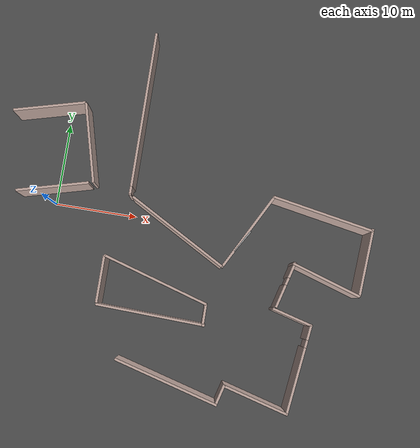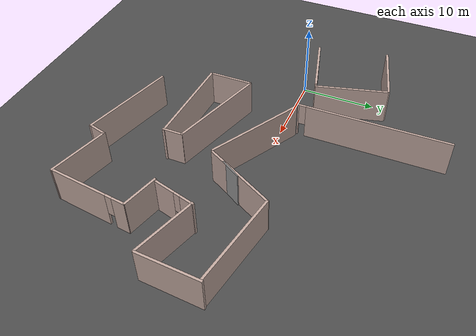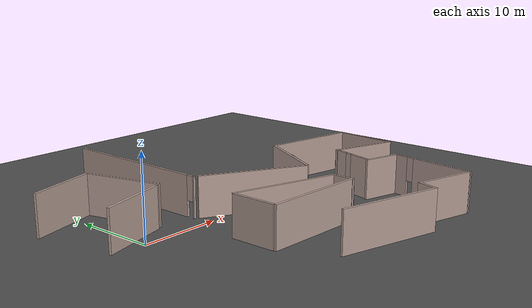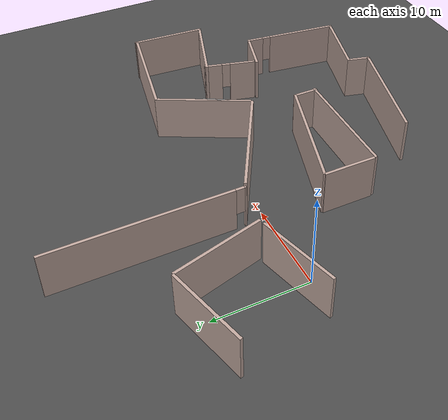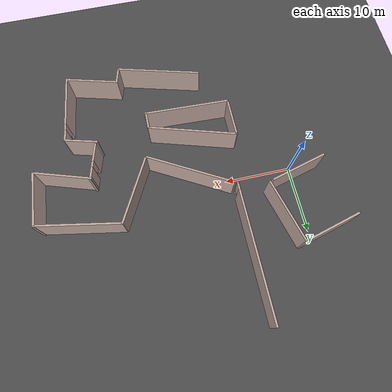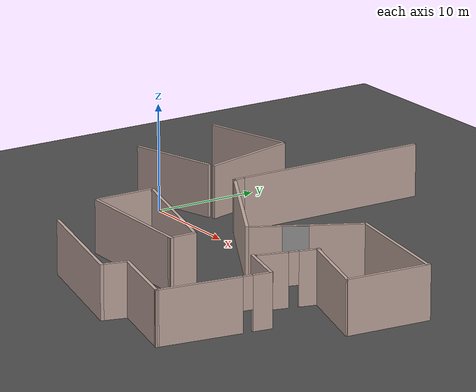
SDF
<sdf version="1.6">
 <model name="engineering_2F">
  <link name="Door_3">
   <pose>23.1364 -1.26405 0 0 -0 1.02413</pose>
   <visual name="Door_3_Visual">
    <pose>0 0 2.5 0 -0 0</pose>
    <geometry><box><size>3 0.17 5</size></box></geometry>
    <material>
     <script><uri>file://media/materials/scripts/gazebo.material</uri><name>Gazebo/Grey</name></script>
     <ambient>0.3 0.3 0.3 1</ambient>
     <diffuse>0.7 0.7 0.7 1</diffuse>
     <specular>0.01 0.01 0.01 1</specular>
     <emissive>0 0 0 1</emissive>
    </material>
   </visual>
   <collision name="Door_3_Collision">
    <pose>0 0 2.5 0 -0 0</pose>
    <geometry><box><size>3 0.17 5</size></box></geometry>
    <surface>
     <friction>
      <ode><mu>1</mu><mu2>1</mu2><fdir1>0 0 0</fdir1><slip1>0</slip1><slip2>0</slip2></ode>
      <torsional>
       <coefficient>1</coefficient>
       <patch_radius>0</patch_radius>
       <surface_radius>0</surface_radius>
       <use_patch_radius>1</use_patch_radius>
       <ode><slip>0</slip></ode>
      </torsional>
     </friction>
     <bounce><restitution_coefficient>0</restitution_coefficient><threshold>1e+06</threshold></bounce>
     <contact>
      <collide_without_contact>0</collide_without_contact>
      <collide_without_contact_bitmask>1</collide_without_contact_bitmask>
      <collide_bitmask>1</collide_bitmask>
      <ode>
       <soft_cfm>0</soft_cfm>
       <soft_erp>0.2</soft_erp>
       <kp>1e+13</kp>
       <kd>1</kd>
       <max_vel>0.01</max_vel>
       <min_depth>0</min_depth>
      </ode>
      <bullet>
       <split_impulse>1</split_impulse>
       <split_impulse_penetration_threshold>-0.01</split_impulse_penetration_threshold>
       <soft_cfm>0</soft_cfm>
       <soft_erp>0.2</soft_erp>
       <kp>1e+13</kp>
       <kd>1</kd>
      </bullet>
     </contact>
    </surface>
   </collision>
  </link>
  <link name="Wall_11">
   <pose>28.8708 -5.47569 0 0 0 -1.8326</pose>
   <visual name="Wall_11_Visual_2">
    <pose>-0.423205 0 3.5 0 -0 0</pose>
    <geometry><box><size>0.9 0.3 3</size></box></geometry>
    <material>
     <script><uri>file://media/materials/scripts/gazebo.material</uri><name>Gazebo/Grey</name></script>
     <ambient>0.760784 0.662745 0.627451 1</ambient>
     <diffuse>0.7 0.7 0.7 1</diffuse>
     <specular>0.01 0.01 0.01 1</specular>
     <emissive>0 0 0 1</emissive>
    </material>
   </visual>
   <visual name="Wall_11_Visual_0">
    <pose>-1.8741 0 2.5 0 -0 0</pose>
    <geometry><box><size>2.00179 0.3 5</size></box></geometry>
    <material>
     <script><uri>file://media/materials/scripts/gazebo.material</uri><name>Gazebo/Grey</name></script>
     <ambient>0.760784 0.662745 0.627451 1</ambient>
     <diffuse>0.7 0.7 0.7 1</diffuse>
     <specular>0.01 0.01 0.01 1</specular>
     <emissive>0 0 0 1</emissive>
    </material>
   </visual>
   <visual name="Wall_11_Visual_1">
    <pose>1.4509 0 2.5 0 -0 0</pose>
    <geometry><box><size>2.84821 0.3 5</size></box></geometry>
    <material>
     <script><uri>file://media/materials/scripts/gazebo.material</uri><name>Gazebo/Grey</name></script>
     <ambient>0.760784 0.662745 0.627451 1</ambient>
     <diffuse>0.7 0.7 0.7 1</diffuse>
     <specular>0.01 0.01 0.01 1</specular>
     <emissive>0 0 0 1</emissive>
    </material>
   </visual>
   <collision name="Wall_11_Collision_0">
    <pose>-1.8741 0 2.5 0 -0 0</pose>
    <geometry><box><size>2.00179 0.3 5</size></box></geometry>
    <surface>
     <friction>
      <ode><mu>1</mu><mu2>1</mu2><fdir1>0 0 0</fdir1><slip1>0</slip1><slip2>0</slip2></ode>
      <torsional>
       <coefficient>1</coefficient>
       <patch_radius>0</patch_radius>
       <surface_radius>0</surface_radius>
       <use_patch_radius>1</use_patch_radius>
       <ode><slip>0</slip></ode>
      </torsional>
     </friction>
     <bounce><restitution_coefficient>0</restitution_coefficient><threshold>1e+06</threshold></bounce>
     <contact>
      <collide_without_contact>0</collide_without_contact>
      <collide_without_contact_bitmask>1</collide_without_contact_bitmask>
      <collide_bitmask>1</collide_bitmask>
      <ode>
       <soft_cfm>0</soft_cfm>
       <soft_erp>0.2</soft_erp>
       <kp>1e+13</kp>
       <kd>1</kd>
       <max_vel>0.01</max_vel>
       <min_depth>0</min_depth>
      </ode>
      <bullet>
       <split_impulse>1</split_impulse>
       <split_impulse_penetration_threshold>-0.01</split_impulse_penetration_threshold>
       <soft_cfm>0</soft_cfm>
       <soft_erp>0.2</soft_erp>
       <kp>1e+13</kp>
       <kd>1</kd>
      </bullet>
     </contact>
    </surface>
   </collision>
   <collision name="Wall_11_Collision_2">
    <pose>-0.423205 0 3.5 0 -0 0</pose>
    <geometry><box><size>0.9 0.3 3</size></box></geometry>
    <surface>
     <friction>
      <ode><mu>1</mu><mu2>1</mu2><fdir1>0 0 0</fdir1><slip1>0</slip1><slip2>0</slip2></ode>
      <torsional>
       <coefficient>1</coefficient>
       <patch_radius>0</patch_radius>
       <surface_radius>0</surface_radius>
       <use_patch_radius>1</use_patch_radius>
       <ode><slip>0</slip></ode>
      </torsional>
     </friction>
     <bounce><restitution_coefficient>0</restitution_coefficient><threshold>1e+06</threshold></bounce>
     <contact>
      <collide_without_contact>0</collide_without_contact>
      <collide_without_contact_bitmask>1</collide_without_contact_bitmask>
      <collide_bitmask>1</collide_bitmask>
      <ode>
       <soft_cfm>0</soft_cfm>
       <soft_erp>0.2</soft_erp>
       <kp>1e+13</kp>
       <kd>1</kd>
       <max_vel>0.01</max_vel>
       <min_depth>0</min_depth>
      </ode>
      <bullet>
       <split_impulse>1</split_impulse>
       <split_impulse_penetration_threshold>-0.01</split_impulse_penetration_threshold>
       <soft_cfm>0</soft_cfm>
       <soft_erp>0.2</soft_erp>
       <kp>1e+13</kp>
       <kd>1</kd>
      </bullet>
     </contact>
    </surface>
   </collision>
   <collision name="Wall_11_Collision_1">
    <pose>1.4509 0 2.5 0 -0 0</pose>
    <geometry><box><size>2.84821 0.3 5</size></box></geometry>
    <surface>
     <friction>
      <ode><mu>1</mu><mu2>1</mu2><fdir1>0 0 0</fdir1><slip1>0</slip1><slip2>0</slip2></ode>
      <torsional>
       <coefficient>1</coefficient>
       <patch_radius>0</patch_radius>
       <surface_radius>0</surface_radius>
       <use_patch_radius>1</use_patch_radius>
       <ode><slip>0</slip></ode>
      </torsional>
     </friction>
     <bounce><restitution_coefficient>0</restitution_coefficient><threshold>1e+06</threshold></bounce>
     <contact>
      <collide_without_contact>0</collide_without_contact>
      <collide_without_contact_bitmask>1</collide_without_contact_bitmask>
      <collide_bitmask>1</collide_bitmask>
      <ode>
       <soft_cfm>0</soft_cfm>
       <soft_erp>0.2</soft_erp>
       <kp>1e+13</kp>
       <kd>1</kd>
       <max_vel>0.01</max_vel>
       <min_depth>0</min_depth>
      </ode>
      <bullet>
       <split_impulse>1</split_impulse>
       <split_impulse_penetration_threshold>-0.01</split_impulse_penetration_threshold>
       <soft_cfm>0</soft_cfm>
       <soft_erp>0.2</soft_erp>
       <kp>1e+13</kp>
       <kd>1</kd>
      </bullet>
     </contact>
    </surface>
   </collision>
  </link>
  <link name="Wall_13">
   <pose>30.1536 -9.06206 0 0 0 -0.261695</pose>
   <visual name="Wall_13_Visual">
    <pose>0 0 2.5 0 -0 0</pose>
    <geometry><box><size>4.8996 0.3 5</size></box></geometry>
    <material>
     <script><uri>file://media/materials/scripts/gazebo.material</uri><name>Gazebo/Grey</name></script>
     <ambient>0.760784 0.662745 0.627451 1</ambient>
     <diffuse>0.7 0.7 0.7 1</diffuse>
     <specular>0.01 0.01 0.01 1</specular>
     <emissive>0 0 0 1</emissive>
    </material>
   </visual>
   <collision name="Wall_13_Collision">
    <pose>0 0 2.5 0 -0 0</pose>
    <geometry><box><size>4.8996 0.3 5</size></box></geometry>
    <surface>
     <friction>
      <ode><mu>1</mu><mu2>1</mu2><fdir1>0 0 0</fdir1><slip1>0</slip1><slip2>0</slip2></ode>
      <torsional>
       <coefficient>1</coefficient>
       <patch_radius>0</patch_radius>
       <surface_radius>0</surface_radius>
       <use_patch_radius>1</use_patch_radius>
       <ode><slip>0</slip></ode>
      </torsional>
     </friction>
     <bounce><restitution_coefficient>0</restitution_coefficient><threshold>1e+06</threshold></bounce>
     <contact>
      <collide_without_contact>0</collide_without_contact>
      <collide_without_contact_bitmask>1</collide_without_contact_bitmask>
      <collide_bitmask>1</collide_bitmask>
      <ode>
       <soft_cfm>0</soft_cfm>
       <soft_erp>0.2</soft_erp>
       <kp>1e+13</kp>
       <kd>1</kd>
       <max_vel>0.01</max_vel>
       <min_depth>0</min_depth>
      </ode>
      <bullet>
       <split_impulse>1</split_impulse>
       <split_impulse_penetration_threshold>-0.01</split_impulse_penetration_threshold>
       <soft_cfm>0</soft_cfm>
       <soft_erp>0.2</soft_erp>
       <kp>1e+13</kp>
       <kd>1</kd>
      </bullet>
     </contact>
    </surface>
   </collision>
  </link>
  <link name="Wall_14">
   <pose>31.8001 -14.9225 0 0 0 -1.69693</pose>
   <visual name="Wall_14_Visual_0">
    <pose>-4.45817 0 2.5 0 -0 0</pose>
    <geometry><box><size>1.83295 0.3 5</size></box></geometry>
    <material>
     <script><uri>file://media/materials/scripts/gazebo.material</uri><name>Gazebo/Grey</name></script>
     <ambient>0.760784 0.662745 0.627451 1</ambient>
     <diffuse>0.7 0.7 0.7 1</diffuse>
     <specular>0.01 0.01 0.01 1</specular>
     <emissive>0 0 0 1</emissive>
    </material>
   </visual>
   <visual name="Wall_14_Visual_2">
    <pose>-3.0917 0 3.5 0 -0 0</pose>
    <geometry><box><size>0.9 0.3 3</size></box></geometry>
    <material>
     <script><uri>file://media/materials/scripts/gazebo.material</uri><name>Gazebo/Grey</name></script>
     <ambient>0.760784 0.662745 0.627451 1</ambient>
     <diffuse>0.7 0.7 0.7 1</diffuse>
     <specular>0.01 0.01 0.01 1</specular>
     <emissive>0 0 0 1</emissive>
    </material>
   </visual>
   <visual name="Wall_14_Visual_1">
    <pose>1.36647 0 2.5 0 -0 0</pose>
    <geometry><box><size>8.01634 0.3 5</size></box></geometry>
    <material>
     <script><uri>file://media/materials/scripts/gazebo.material</uri><name>Gazebo/Grey</name></script>
     <ambient>0.760784 0.662745 0.627451 1</ambient>
     <diffuse>0.7 0.7 0.7 1</diffuse>
     <specular>0.01 0.01 0.01 1</specular>
     <emissive>0 0 0 1</emissive>
    </material>
   </visual>
   <collision name="Wall_14_Collision_0">
    <pose>-4.45817 0 2.5 0 -0 0</pose>
    <geometry><box><size>1.83295 0.3 5</size></box></geometry>
    <surface>
     <friction>
      <ode><mu>1</mu><mu2>1</mu2><fdir1>0 0 0</fdir1><slip1>0</slip1><slip2>0</slip2></ode>
      <torsional>
       <coefficient>1</coefficient>
       <patch_radius>0</patch_radius>
       <surface_radius>0</surface_radius>
       <use_patch_radius>1</use_patch_radius>
       <ode><slip>0</slip></ode>
      </torsional>
     </friction>
     <bounce><restitution_coefficient>0</restitution_coefficient><threshold>1e+06</threshold></bounce>
     <contact>
      <collide_without_contact>0</collide_without_contact>
      <collide_without_contact_bitmask>1</collide_without_contact_bitmask>
      <collide_bitmask>1</collide_bitmask>
      <ode>
       <soft_cfm>0</soft_cfm>
       <soft_erp>0.2</soft_erp>
       <kp>1e+13</kp>
       <kd>1</kd>
       <max_vel>0.01</max_vel>
       <min_depth>0</min_depth>
      </ode>
      <bullet>
       <split_impulse>1</split_impulse>
       <split_impulse_penetration_threshold>-0.01</split_impulse_penetration_threshold>
       <soft_cfm>0</soft_cfm>
       <soft_erp>0.2</soft_erp>
       <kp>1e+13</kp>
       <kd>1</kd>
      </bullet>
     </contact>
    </surface>
   </collision>
   <collision name="Wall_14_Collision_2">
    <pose>-3.0917 0 3.5 0 -0 0</pose>
    <geometry><box><size>0.9 0.3 3</size></box></geometry>
    <surface>
     <friction>
      <ode><mu>1</mu><mu2>1</mu2><fdir1>0 0 0</fdir1><slip1>0</slip1><slip2>0</slip2></ode>
      <torsional>
       <coefficient>1</coefficient>
       <patch_radius>0</patch_radius>
       <surface_radius>0</surface_radius>
       <use_patch_radius>1</use_patch_radius>
       <ode><slip>0</slip></ode>
      </torsional>
     </friction>
     <bounce><restitution_coefficient>0</restitution_coefficient><threshold>1e+06</threshold></bounce>
     <contact>
      <collide_without_contact>0</collide_without_contact>
      <collide_without_contact_bitmask>1</collide_without_contact_bitmask>
      <collide_bitmask>1</collide_bitmask>
      <ode>
       <soft_cfm>0</soft_cfm>
       <soft_erp>0.2</soft_erp>
       <kp>1e+13</kp>
       <kd>1</kd>
       <max_vel>0.01</max_vel>
       <min_depth>0</min_depth>
      </ode>
      <bullet>
       <split_impulse>1</split_impulse>
       <split_impulse_penetration_threshold>-0.01</split_impulse_penetration_threshold>
       <soft_cfm>0</soft_cfm>
       <soft_erp>0.2</soft_erp>
       <kp>1e+13</kp>
       <kd>1</kd>
      </bullet>
     </contact>
    </surface>
   </collision>
   <collision name="Wall_14_Collision_1">
    <pose>1.36647 0 2.5 0 -0 0</pose>
    <geometry><box><size>8.01634 0.3 5</size></box></geometry>
    <surface>
     <friction>
      <ode><mu>1</mu><mu2>1</mu2><fdir1>0 0 0</fdir1><slip1>0</slip1><slip2>0</slip2></ode>
      <torsional>
       <coefficient>1</coefficient>
       <patch_radius>0</patch_radius>
       <surface_radius>0</surface_radius>
       <use_patch_radius>1</use_patch_radius>
       <ode><slip>0</slip></ode>
      </torsional>
     </friction>
     <bounce><restitution_coefficient>0</restitution_coefficient><threshold>1e+06</threshold></bounce>
     <contact>
      <collide_without_contact>0</collide_without_contact>
      <collide_without_contact_bitmask>1</collide_without_contact_bitmask>
      <collide_bitmask>1</collide_bitmask>
      <ode>
       <soft_cfm>0</soft_cfm>
       <soft_erp>0.2</soft_erp>
       <kp>1e+13</kp>
       <kd>1</kd>
       <max_vel>0.01</max_vel>
       <min_depth>0</min_depth>
      </ode>
      <bullet>
       <split_impulse>1</split_impulse>
       <split_impulse_penetration_threshold>-0.01</split_impulse_penetration_threshold>
       <soft_cfm>0</soft_cfm>
       <soft_erp>0.2</soft_erp>
       <kp>1e+13</kp>
       <kd>1</kd>
      </bullet>
     </contact>
    </surface>
   </collision>
  </link>
  <link name="Wall_15">
   <pose>27.3513 -19.0896 0 0 -0 2.87978</pose>
   <visual name="Wall_15_Visual">
    <pose>0 0 2.5 0 -0 0</pose>
    <geometry><box><size>8.15012 0.3 5</size></box></geometry>
    <material>
     <script><uri>file://media/materials/scripts/gazebo.material</uri><name>Gazebo/Grey</name></script>
     <ambient>0.760784 0.662745 0.627451 1</ambient>
     <diffuse>0.7 0.7 0.7 1</diffuse>
     <specular>0.01 0.01 0.01 1</specular>
     <emissive>0 0 0 1</emissive>
    </material>
   </visual>
   <collision name="Wall_15_Collision">
    <pose>0 0 2.5 0 -0 0</pose>
    <geometry><box><size>8.15012 0.3 5</size></box></geometry>
    <surface>
     <friction>
      <ode><mu>1</mu><mu2>1</mu2><fdir1>0 0 0</fdir1><slip1>0</slip1><slip2>0</slip2></ode>
      <torsional>
       <coefficient>1</coefficient>
       <patch_radius>0</patch_radius>
       <surface_radius>0</surface_radius>
       <use_patch_radius>1</use_patch_radius>
       <ode><slip>0</slip></ode>
      </torsional>
     </friction>
     <bounce><restitution_coefficient>0</restitution_coefficient><threshold>1e+06</threshold></bounce>
     <contact>
      <collide_without_contact>0</collide_without_contact>
      <collide_without_contact_bitmask>1</collide_without_contact_bitmask>
      <collide_bitmask>1</collide_bitmask>
      <ode>
       <soft_cfm>0</soft_cfm>
       <soft_erp>0.2</soft_erp>
       <kp>1e+13</kp>
       <kd>1</kd>
       <max_vel>0.01</max_vel>
       <min_depth>0</min_depth>
      </ode>
      <bullet>
       <split_impulse>1</split_impulse>
       <split_impulse_penetration_threshold>-0.01</split_impulse_penetration_threshold>
       <soft_cfm>0</soft_cfm>
       <soft_erp>0.2</soft_erp>
       <kp>1e+13</kp>
       <kd>1</kd>
      </bullet>
     </contact>
    </surface>
   </collision>
  </link>
  <link name="Wall_16">
   <pose>23.2558 -19.2086 0 0 0 -1.83249</pose>
   <visual name="Wall_16_Visual">
    <pose>0 0 2.5 0 -0 0</pose>
    <geometry><box><size>2.64983 0.3 5</size></box></geometry>
    <material>
     <script><uri>file://media/materials/scripts/gazebo.material</uri><name>Gazebo/Grey</name></script>
     <ambient>0.760784 0.662745 0.627451 1</ambient>
     <diffuse>0.7 0.7 0.7 1</diffuse>
     <specular>0.01 0.01 0.01 1</specular>
     <emissive>0 0 0 1</emissive>
    </material>
   </visual>
   <collision name="Wall_16_Collision">
    <pose>0 0 2.5 0 -0 0</pose>
    <geometry><box><size>2.64983 0.3 5</size></box></geometry>
    <surface>
     <friction>
      <ode><mu>1</mu><mu2>1</mu2><fdir1>0 0 0</fdir1><slip1>0</slip1><slip2>0</slip2></ode>
      <torsional>
       <coefficient>1</coefficient>
       <patch_radius>0</patch_radius>
       <surface_radius>0</surface_radius>
       <use_patch_radius>1</use_patch_radius>
       <ode><slip>0</slip></ode>
      </torsional>
     </friction>
     <bounce><restitution_coefficient>0</restitution_coefficient><threshold>1e+06</threshold></bounce>
     <contact>
      <collide_without_contact>0</collide_without_contact>
      <collide_without_contact_bitmask>1</collide_without_contact_bitmask>
      <collide_bitmask>1</collide_bitmask>
      <ode>
       <soft_cfm>0</soft_cfm>
       <soft_erp>0.2</soft_erp>
       <kp>1e+13</kp>
       <kd>1</kd>
       <max_vel>0.01</max_vel>
       <min_depth>0</min_depth>
      </ode>
      <bullet>
       <split_impulse>1</split_impulse>
       <split_impulse_penetration_threshold>-0.01</split_impulse_penetration_threshold>
       <soft_cfm>0</soft_cfm>
       <soft_erp>0.2</soft_erp>
       <kp>1e+13</kp>
       <kd>1</kd>
      </bullet>
     </contact>
    </surface>
   </collision>
  </link>
  <link name="Wall_17">
   <pose>16.8668 -18.7131 0 0 -0 2.87979</pose>
   <visual name="Wall_17_Visual">
    <pose>0 0 2.5 0 -0 0</pose>
    <geometry><box><size>12.8998 0.3 5</size></box></geometry>
    <material>
     <script><uri>file://media/materials/scripts/gazebo.material</uri><name>Gazebo/Grey</name></script>
     <ambient>0.760784 0.662745 0.627451 1</ambient>
     <diffuse>0.7 0.7 0.7 1</diffuse>
     <specular>0.01 0.01 0.01 1</specular>
     <emissive>0 0 0 1</emissive>
    </material>
   </visual>
   <collision name="Wall_17_Collision">
    <pose>0 0 2.5 0 -0 0</pose>
    <geometry><box><size>12.8998 0.3 5</size></box></geometry>
    <surface>
     <friction>
      <ode><mu>1</mu><mu2>1</mu2><fdir1>0 0 0</fdir1><slip1>0</slip1><slip2>0</slip2></ode>
      <torsional>
       <coefficient>1</coefficient>
       <patch_radius>0</patch_radius>
       <surface_radius>0</surface_radius>
       <use_patch_radius>1</use_patch_radius>
       <ode><slip>0</slip></ode>
      </torsional>
     </friction>
     <bounce><restitution_coefficient>0</restitution_coefficient><threshold>1e+06</threshold></bounce>
     <contact>
      <collide_without_contact>0</collide_without_contact>
      <collide_without_contact_bitmask>1</collide_without_contact_bitmask>
      <collide_bitmask>1</collide_bitmask>
      <ode>
       <soft_cfm>0</soft_cfm>
       <soft_erp>0.2</soft_erp>
       <kp>1e+13</kp>
       <kd>1</kd>
       <max_vel>0.01</max_vel>
       <min_depth>0</min_depth>
      </ode>
      <bullet>
       <split_impulse>1</split_impulse>
       <split_impulse_penetration_threshold>-0.01</split_impulse_penetration_threshold>
       <soft_cfm>0</soft_cfm>
       <soft_erp>0.2</soft_erp>
       <kp>1e+13</kp>
       <kd>1</kd>
      </bullet>
     </contact>
    </surface>
   </collision>
  </link>
  <link name="Wall_21">
   <pose>9.15927 11.9128 0 0 -0 1.575</pose>
   <visual name="Wall_21_Visual_2">
    <pose>-9.2858 0 3.5 0 -0 0</pose>
    <geometry><box><size>0.9 0.3 3</size></box></geometry>
    <material>
     <script><uri>file://media/materials/scripts/gazebo.material</uri><name>Gazebo/Grey</name></script>
     <ambient>0.760784 0.662745 0.627451 1</ambient>
     <diffuse>0.7 0.7 0.7 1</diffuse>
     <specular>0.01 0.01 0.01 1</specular>
     <emissive>0 0 0 1</emissive>
    </material>
   </visual>
   <visual name="Wall_21_Visual_0">
    <pose>-9.82244 0 2.5 0 -0 0</pose>
    <geometry><box><size>0.173287 0.3 5</size></box></geometry>
    <material>
     <script><uri>file://media/materials/scripts/gazebo.material</uri><name>Gazebo/Grey</name></script>
     <ambient>0.760784 0.662745 0.627451 1</ambient>
     <diffuse>0.7 0.7 0.7 1</diffuse>
     <specular>0.01 0.01 0.01 1</specular>
     <emissive>0 0 0 1</emissive>
    </material>
   </visual>
   <visual name="Wall_21_Visual_1">
    <pose>0.536644 0 2.5 0 -0 0</pose>
    <geometry><box><size>18.7449 0.3 5</size></box></geometry>
    <material>
     <script><uri>file://media/materials/scripts/gazebo.material</uri><name>Gazebo/Grey</name></script>
     <ambient>0.760784 0.662745 0.627451 1</ambient>
     <diffuse>0.7 0.7 0.7 1</diffuse>
     <specular>0.01 0.01 0.01 1</specular>
     <emissive>0 0 0 1</emissive>
    </material>
   </visual>
   <collision name="Wall_21_Collision_2">
    <pose>-9.2858 0 3.5 0 -0 0</pose>
    <geometry><box><size>0.9 0.3 3</size></box></geometry>
    <surface>
     <friction>
      <ode><mu>1</mu><mu2>1</mu2><fdir1>0 0 0</fdir1><slip1>0</slip1><slip2>0</slip2></ode>
      <torsional>
       <coefficient>1</coefficient>
       <patch_radius>0</patch_radius>
       <surface_radius>0</surface_radius>
       <use_patch_radius>1</use_patch_radius>
       <ode><slip>0</slip></ode>
      </torsional>
     </friction>
     <bounce><restitution_coefficient>0</restitution_coefficient><threshold>1e+06</threshold></bounce>
     <contact>
      <collide_without_contact>0</collide_without_contact>
      <collide_without_contact_bitmask>1</collide_without_contact_bitmask>
      <collide_bitmask>1</collide_bitmask>
      <ode>
       <soft_cfm>0</soft_cfm>
       <soft_erp>0.2</soft_erp>
       <kp>1e+13</kp>
       <kd>1</kd>
       <max_vel>0.01</max_vel>
       <min_depth>0</min_depth>
      </ode>
      <bullet>
       <split_impulse>1</split_impulse>
       <split_impulse_penetration_threshold>-0.01</split_impulse_penetration_threshold>
       <soft_cfm>0</soft_cfm>
       <soft_erp>0.2</soft_erp>
       <kp>1e+13</kp>
       <kd>1</kd>
      </bullet>
     </contact>
    </surface>
   </collision>
   <collision name="Wall_21_Collision_1">
    <pose>0.536644 0 2.5 0 -0 0</pose>
    <geometry><box><size>18.7449 0.3 5</size></box></geometry>
    <surface>
     <friction>
      <ode><mu>1</mu><mu2>1</mu2><fdir1>0 0 0</fdir1><slip1>0</slip1><slip2>0</slip2></ode>
      <torsional>
       <coefficient>1</coefficient>
       <patch_radius>0</patch_radius>
       <surface_radius>0</surface_radius>
       <use_patch_radius>1</use_patch_radius>
       <ode><slip>0</slip></ode>
      </torsional>
     </friction>
     <bounce><restitution_coefficient>0</restitution_coefficient><threshold>1e+06</threshold></bounce>
     <contact>
      <collide_without_contact>0</collide_without_contact>
      <collide_without_contact_bitmask>1</collide_without_contact_bitmask>
      <collide_bitmask>1</collide_bitmask>
      <ode>
       <soft_cfm>0</soft_cfm>
       <soft_erp>0.2</soft_erp>
       <kp>1e+13</kp>
       <kd>1</kd>
       <max_vel>0.01</max_vel>
       <min_depth>0</min_depth>
      </ode>
      <bullet>
       <split_impulse>1</split_impulse>
       <split_impulse_penetration_threshold>-0.01</split_impulse_penetration_threshold>
       <soft_cfm>0</soft_cfm>
       <soft_erp>0.2</soft_erp>
       <kp>1e+13</kp>
       <kd>1</kd>
      </bullet>
     </contact>
    </surface>
   </collision>
   <collision name="Wall_21_Collision_0">
    <pose>-9.82244 0 2.5 0 -0 0</pose>
    <geometry><box><size>0.173287 0.3 5</size></box></geometry>
    <surface>
     <friction>
      <ode><mu>1</mu><mu2>1</mu2><fdir1>0 0 0</fdir1><slip1>0</slip1><slip2>0</slip2></ode>
      <torsional>
       <coefficient>1</coefficient>
       <patch_radius>0</patch_radius>
       <surface_radius>0</surface_radius>
       <use_patch_radius>1</use_patch_radius>
       <ode><slip>0</slip></ode>
      </torsional>
     </friction>
     <bounce><restitution_coefficient>0</restitution_coefficient><threshold>1e+06</threshold></bounce>
     <contact>
      <collide_without_contact>0</collide_without_contact>
      <collide_without_contact_bitmask>1</collide_without_contact_bitmask>
      <collide_bitmask>1</collide_bitmask>
      <ode>
       <soft_cfm>0</soft_cfm>
       <soft_erp>0.2</soft_erp>
       <kp>1e+13</kp>
       <kd>1</kd>
       <max_vel>0.01</max_vel>
       <min_depth>0</min_depth>
      </ode>
      <bullet>
       <split_impulse>1</split_impulse>
       <split_impulse_penetration_threshold>-0.01</split_impulse_penetration_threshold>
       <soft_cfm>0</soft_cfm>
       <soft_erp>0.2</soft_erp>
       <kp>1e+13</kp>
       <kd>1</kd>
      </bullet>
     </contact>
    </surface>
   </collision>
  </link>
  <link name="Wall_4">
   <pose>32.0256 3.41396 0 0 -0 2.96431</pose>
   <visual name="Wall_4_Visual">
    <pose>0 0 2.5 0 -0 0</pose>
    <geometry><box><size>12.2839 0.3 5</size></box></geometry>
    <material>
     <script><uri>file://media/materials/scripts/gazebo.material</uri><name>Gazebo/Grey</name></script>
     <ambient>0.760784 0.662745 0.627451 1</ambient>
     <diffuse>0.7 0.7 0.7 1</diffuse>
     <specular>0.01 0.01 0.01 1</specular>
     <emissive>0 0 0 1</emissive>
    </material>
   </visual>
   <collision name="Wall_4_Collision">
    <pose>0 0 2.5 0 -0 0</pose>
    <geometry><box><size>12.2839 0.3 5</size></box></geometry>
    <surface>
     <friction>
      <ode><mu>1</mu><mu2>1</mu2><fdir1>0 0 0</fdir1><slip1>0</slip1><slip2>0</slip2></ode>
      <torsional>
       <coefficient>1</coefficient>
       <patch_radius>0</patch_radius>
       <surface_radius>0</surface_radius>
       <use_patch_radius>1</use_patch_radius>
       <ode><slip>0</slip></ode>
      </torsional>
     </friction>
     <bounce><restitution_coefficient>0</restitution_coefficient><threshold>1e+06</threshold></bounce>
     <contact>
      <collide_without_contact>0</collide_without_contact>
      <collide_without_contact_bitmask>1</collide_without_contact_bitmask>
      <collide_bitmask>1</collide_bitmask>
      <ode>
       <soft_cfm>0</soft_cfm>
       <soft_erp>0.2</soft_erp>
       <kp>1e+13</kp>
       <kd>1</kd>
       <max_vel>0.01</max_vel>
       <min_depth>0</min_depth>
      </ode>
      <bullet>
       <split_impulse>1</split_impulse>
       <split_impulse_penetration_threshold>-0.01</split_impulse_penetration_threshold>
       <soft_cfm>0</soft_cfm>
       <soft_erp>0.2</soft_erp>
       <kp>1e+13</kp>
       <kd>1</kd>
      </bullet>
     </contact>
    </surface>
   </collision>
  </link>
  <link name="Wall_46_clone">
   <pose>7.44704 -8.23054 0 0 -0 1.5708</pose>
   <inertial>
    <inertia><ixx>nan</ixx><ixy>0</ixy><ixz>0</ixz><iyy>nan</iyy><iyz>0</iyz><izz>nan</izz></inertia>
    <mass>0</mass>
   </inertial>
   <visual name="Wall_46_Visual">
    <pose>0 0 2.5 0 -0 0</pose>
    <geometry><box><size>5.5737 0.3 5</size></box></geometry>
    <material>
     <script><uri>file://media/materials/scripts/gazebo.material</uri><name>Gazebo/Grey</name></script>
     <ambient>0.760784 0.662745 0.627451 1</ambient>
     <diffuse>0.7 0.7 0.7 1</diffuse>
     <specular>0.01 0.01 0.01 1</specular>
     <emissive>0 0 0 1</emissive>
     <shader type="pixel"/>
    </material>
   </visual>
   <collision name="Wall_46_Collision">
    <pose>0 0 2.5 0 -0 0</pose>
    <geometry><box><size>5.5737 0.3 5</size></box></geometry>
    <surface>
     <friction>
      <ode><mu>1</mu><mu2>1</mu2><fdir1>0 0 0</fdir1><slip1>0</slip1><slip2>0</slip2></ode>
      <torsional>
       <coefficient>1</coefficient>
       <patch_radius>0</patch_radius>
       <surface_radius>0</surface_radius>
       <use_patch_radius>1</use_patch_radius>
       <ode><slip>0</slip></ode>
      </torsional>
     </friction>
     <bounce><restitution_coefficient>0</restitution_coefficient><threshold>1e+06</threshold></bounce>
     <contact>
      <collide_without_contact>0</collide_without_contact>
      <collide_without_contact_bitmask>1</collide_without_contact_bitmask>
      <collide_bitmask>1</collide_bitmask>
      <ode>
       <soft_cfm>0</soft_cfm>
       <soft_erp>0.2</soft_erp>
       <kp>1e+13</kp>
       <kd>1</kd>
       <max_vel>0.01</max_vel>
       <min_depth>0</min_depth>
      </ode>
      <bullet>
       <split_impulse>1</split_impulse>
       <split_impulse_penetration_threshold>-0.01</split_impulse_penetration_threshold>
       <soft_cfm>0</soft_cfm>
       <soft_erp>0.2</soft_erp>
       <kp>1e+13</kp>
       <kd>1</kd>
      </bullet>
     </contact>
    </surface>
   </collision>
  </link>
  <link name="Wall_46_clone_clone">
   <pose>20.0554 -10.4377 0 0 -0 1.5708</pose>
   <inertial>
    <inertia><ixx>nan</ixx><ixy>0</ixy><ixz>0</ixz><iyy>nan</iyy><iyz>0</iyz><izz>nan</izz></inertia>
    <mass>0</mass>
   </inertial>
   <visual name="Wall_46_Visual">
    <pose>0 0 2.5 0 -0 0</pose>
    <geometry><box><size>2.74348 0.3 5</size></box></geometry>
    <material>
     <script><uri>file://media/materials/scripts/gazebo.material</uri><name>Gazebo/Grey</name></script>
     <ambient>0.760784 0.662745 0.627451 1</ambient>
     <diffuse>0.7 0.7 0.7 1</diffuse>
     <specular>0.01 0.01 0.01 1</specular>
     <emissive>0 0 0 1</emissive>
     <shader type="pixel"/>
    </material>
   </visual>
   <collision name="Wall_46_Collision">
    <pose>0 0 2.5 0 -0 0</pose>
    <geometry><box><size>2.74348 0.3 5</size></box></geometry>
    <surface>
     <friction>
      <ode><mu>1</mu><mu2>1</mu2><fdir1>0 0 0</fdir1><slip1>0</slip1><slip2>0</slip2></ode>
      <torsional>
       <coefficient>1</coefficient>
       <patch_radius>0</patch_radius>
       <surface_radius>0</surface_radius>
       <use_patch_radius>1</use_patch_radius>
       <ode><slip>0</slip></ode>
      </torsional>
     </friction>
     <bounce><restitution_coefficient>0</restitution_coefficient><threshold>1e+06</threshold></bounce>
     <contact>
      <collide_without_contact>0</collide_without_contact>
      <collide_without_contact_bitmask>1</collide_without_contact_bitmask>
      <collide_bitmask>1</collide_bitmask>
      <ode>
       <soft_cfm>0</soft_cfm>
       <soft_erp>0.2</soft_erp>
       <kp>1e+13</kp>
       <kd>1</kd>
       <max_vel>0.01</max_vel>
       <min_depth>0</min_depth>
      </ode>
      <bullet>
       <split_impulse>1</split_impulse>
       <split_impulse_penetration_threshold>-0.01</split_impulse_penetration_threshold>
       <soft_cfm>0</soft_cfm>
       <soft_erp>0.2</soft_erp>
       <kp>1e+13</kp>
       <kd>1</kd>
      </bullet>
     </contact>
    </surface>
   </collision>
  </link>
  <link name="Wall_47_clone">
   <pose>15.397 -1.34152 0 0 -0 2.63397</pose>
   <visual name="Wall_47_Visual">
    <pose>0 0 2.5 0 -0 0</pose>
    <geometry><box><size>13.2483 0.3 5</size></box></geometry>
    <material>
     <script><uri>file://media/materials/scripts/gazebo.material</uri><name>Gazebo/Grey</name></script>
     <ambient>0.760784 0.662745 0.627451 1</ambient>
     <diffuse>0.7 0.7 0.7 1</diffuse>
     <specular>0.01 0.01 0.01 1</specular>
     <emissive>0 0 0 1</emissive>
     <shader type="pixel"/>
    </material>
   </visual>
   <collision name="Wall_47_Collision">
    <pose>0 0 2.5 0 -0 0</pose>
    <geometry><box><size>13.2483 0.3 5</size></box></geometry>
    <surface>
     <friction>
      <ode><mu>1</mu><mu2>1</mu2><fdir1>0 0 0</fdir1><slip1>0</slip1><slip2>0</slip2></ode>
      <torsional>
       <coefficient>1</coefficient>
       <patch_radius>0</patch_radius>
       <surface_radius>0</surface_radius>
       <use_patch_radius>1</use_patch_radius>
       <ode><slip>0</slip></ode>
      </torsional>
     </friction>
     <bounce><restitution_coefficient>0</restitution_coefficient><threshold>1e+06</threshold></bounce>
     <contact>
      <collide_without_contact>0</collide_without_contact>
      <collide_without_contact_bitmask>1</collide_without_contact_bitmask>
      <collide_bitmask>1</collide_bitmask>
      <ode>
       <soft_cfm>0</soft_cfm>
       <soft_erp>0.2</soft_erp>
       <kp>1e+13</kp>
       <kd>1</kd>
       <max_vel>0.01</max_vel>
       <min_depth>0</min_depth>
      </ode>
      <bullet>
       <split_impulse>1</split_impulse>
       <split_impulse_penetration_threshold>-0.01</split_impulse_penetration_threshold>
       <soft_cfm>0</soft_cfm>
       <soft_erp>0.2</soft_erp>
       <kp>1e+13</kp>
       <kd>1</kd>
      </bullet>
     </contact>
    </surface>
   </collision>
  </link>
  <link name="Wall_47_clone_0">
   <pose>13.7723 -7.31208 0 0 -0 2.85229</pose>
   <visual name="Wall_47_Visual">
    <pose>0 0 2.5 0 -0 0</pose>
    <geometry><box><size>13.2483 0.3 5</size></box></geometry>
    <material>
     <script><uri>file://media/materials/scripts/gazebo.material</uri><name>Gazebo/Grey</name></script>
     <ambient>0.760784 0.662745 0.627451 1</ambient>
     <diffuse>0.7 0.7 0.7 1</diffuse>
     <specular>0.01 0.01 0.01 1</specular>
     <emissive>0 0 0 1</emissive>
     <shader type="pixel"/>
    </material>
   </visual>
   <collision name="Wall_47_Collision">
    <pose>0 0 2.5 0 -0 0</pose>
    <geometry><box><size>13.2483 0.3 5</size></box></geometry>
    <surface>
     <friction>
      <ode><mu>1</mu><mu2>1</mu2><fdir1>0 0 0</fdir1><slip1>0</slip1><slip2>0</slip2></ode>
      <torsional>
       <coefficient>1</coefficient>
       <patch_radius>0</patch_radius>
       <surface_radius>0</surface_radius>
       <use_patch_radius>1</use_patch_radius>
       <ode><slip>0</slip></ode>
      </torsional>
     </friction>
     <bounce><restitution_coefficient>0</restitution_coefficient><threshold>1e+06</threshold></bounce>
     <contact>
      <collide_without_contact>0</collide_without_contact>
      <collide_without_contact_bitmask>1</collide_without_contact_bitmask>
      <collide_bitmask>1</collide_bitmask>
      <ode>
       <soft_cfm>0</soft_cfm>
       <soft_erp>0.2</soft_erp>
       <kp>1e+13</kp>
       <kd>1</kd>
       <max_vel>0.01</max_vel>
       <min_depth>0</min_depth>
      </ode>
      <bullet>
       <split_impulse>1</split_impulse>
       <split_impulse_penetration_threshold>-0.01</split_impulse_penetration_threshold>
       <soft_cfm>0</soft_cfm>
       <soft_erp>0.2</soft_erp>
       <kp>1e+13</kp>
       <kd>1</kd>
      </bullet>
     </contact>
    </surface>
   </collision>
  </link>
  <link name="Wall_47_clone_0_clone">
   <pose>13.8489 -11.4116 0 0 -0 3.10879</pose>
   <inertial>
    <inertia><ixx>nan</ixx><ixy>0</ixy><ixz>0</ixz><iyy>nan</iyy><iyz>0</iyz><izz>nan</izz></inertia>
    <mass>0</mass>
   </inertial>
   <visual name="Wall_47_Visual">
    <pose>0 0 2.5 0 -0 0</pose>
    <geometry><box><size>12.9195 0.3 5</size></box></geometry>
    <material>
     <script><uri>file://media/materials/scripts/gazebo.material</uri><name>Gazebo/Grey</name></script>
     <ambient>0.760784 0.662745 0.627451 1</ambient>
     <diffuse>0.7 0.7 0.7 1</diffuse>
     <specular>0.01 0.01 0.01 1</specular>
     <emissive>0 0 0 1</emissive>
     <shader type="pixel"/>
    </material>
   </visual>
   <collision name="Wall_47_Collision">
    <pose>0 0 2.5 0 -0 0</pose>
    <geometry><box><size>12.9195 0.3 5</size></box></geometry>
    <surface>
     <friction>
      <ode><mu>1</mu><mu2>1</mu2><fdir1>0 0 0</fdir1><slip1>0</slip1><slip2>0</slip2></ode>
      <torsional>
       <coefficient>1</coefficient>
       <patch_radius>0</patch_radius>
       <surface_radius>0</surface_radius>
       <use_patch_radius>1</use_patch_radius>
       <ode><slip>0</slip></ode>
      </torsional>
     </friction>
     <bounce><restitution_coefficient>0</restitution_coefficient><threshold>1e+06</threshold></bounce>
     <contact>
      <collide_without_contact>0</collide_without_contact>
      <collide_without_contact_bitmask>1</collide_without_contact_bitmask>
      <collide_bitmask>1</collide_bitmask>
      <ode>
       <soft_cfm>0</soft_cfm>
       <soft_erp>0.2</soft_erp>
       <kp>1e+13</kp>
       <kd>1</kd>
       <max_vel>0.01</max_vel>
       <min_depth>0</min_depth>
      </ode>
      <bullet>
       <split_impulse>1</split_impulse>
       <split_impulse_penetration_threshold>-0.01</split_impulse_penetration_threshold>
       <soft_cfm>0</soft_cfm>
       <soft_erp>0.2</soft_erp>
       <kp>1e+13</kp>
       <kd>1</kd>
      </bullet>
     </contact>
    </surface>
   </collision>
  </link>
  <link name="Wall_5">
   <pose>23.7093 0.062096 0 0 0 -2.05805</pose>
   <visual name="Wall_5_Visual">
    <pose>0 0 2.5 0 -0 0</pose>
    <geometry><box><size>10.2784 0.3 5</size></box></geometry>
    <material>
     <script><uri>file://media/materials/scripts/gazebo.material</uri><name>Gazebo/Grey</name></script>
     <ambient>0.760784 0.662745 0.627451 1</ambient>
     <diffuse>0.7 0.7 0.7 1</diffuse>
     <specular>0.01 0.01 0.01 1</specular>
     <emissive>0 0 0 1</emissive>
    </material>
   </visual>
   <collision name="Wall_5_Collision">
    <pose>0 0 2.5 0 -0 0</pose>
    <geometry><box><size>10.2784 0.3 5</size></box></geometry>
    <surface>
     <friction>
      <ode><mu>1</mu><mu2>1</mu2><fdir1>0 0 0</fdir1><slip1>0</slip1><slip2>0</slip2></ode>
      <torsional>
       <coefficient>1</coefficient>
       <patch_radius>0</patch_radius>
       <surface_radius>0</surface_radius>
       <use_patch_radius>1</use_patch_radius>
       <ode><slip>0</slip></ode>
      </torsional>
     </friction>
     <bounce><restitution_coefficient>0</restitution_coefficient><threshold>1e+06</threshold></bounce>
     <contact>
      <collide_without_contact>0</collide_without_contact>
      <collide_without_contact_bitmask>1</collide_without_contact_bitmask>
      <collide_bitmask>1</collide_bitmask>
      <ode>
       <soft_cfm>0</soft_cfm>
       <soft_erp>0.2</soft_erp>
       <kp>1e+13</kp>
       <kd>1</kd>
       <max_vel>0.01</max_vel>
       <min_depth>0</min_depth>
      </ode>
      <bullet>
       <split_impulse>1</split_impulse>
       <split_impulse_penetration_threshold>-0.01</split_impulse_penetration_threshold>
       <soft_cfm>0</soft_cfm>
       <soft_erp>0.2</soft_erp>
       <kp>1e+13</kp>
       <kd>1</kd>
      </bullet>
     </contact>
    </surface>
   </collision>
  </link>
  <link name="Wall_56_clone_0">
   <pose>-2 11 0 0 -0 0.261798</pose>
   <visual name="Wall_56_Visual">
    <pose>0 0 2.5 0 -0 0</pose>
    <geometry><box><size>8.64972 0.3 5</size></box></geometry>
    <material>
     <script><uri>file://media/materials/scripts/gazebo.material</uri><name>Gazebo/Grey</name></script>
     <ambient>0.760784 0.662745 0.627451 1</ambient>
     <diffuse>0.7 0.7 0.7 1</diffuse>
     <specular>0.01 0.01 0.01 1</specular>
     <emissive>0 0 0 1</emissive>
     <shader type="pixel"/>
    </material>
   </visual>
   <collision name="Wall_56_Collision">
    <pose>0 0 2.5 0 -0 0</pose>
    <geometry><box><size>8.64972 0.3 5</size></box></geometry>
    <surface>
     <friction>
      <ode><mu>1</mu><mu2>1</mu2><fdir1>0 0 0</fdir1><slip1>0</slip1><slip2>0</slip2></ode>
      <torsional>
       <coefficient>1</coefficient>
       <patch_radius>0</patch_radius>
       <surface_radius>0</surface_radius>
       <use_patch_radius>1</use_patch_radius>
       <ode><slip>0</slip></ode>
      </torsional>
     </friction>
     <bounce><restitution_coefficient>0</restitution_coefficient><threshold>1e+06</threshold></bounce>
     <contact>
      <collide_without_contact>0</collide_without_contact>
      <collide_without_contact_bitmask>1</collide_without_contact_bitmask>
      <collide_bitmask>1</collide_bitmask>
      <ode>
       <soft_cfm>0</soft_cfm>
       <soft_erp>0.2</soft_erp>
       <kp>1e+13</kp>
       <kd>1</kd>
       <max_vel>0.01</max_vel>
       <min_depth>0</min_depth>
      </ode>
      <bullet>
       <split_impulse>1</split_impulse>
       <split_impulse_penetration_threshold>-0.01</split_impulse_penetration_threshold>
       <soft_cfm>0</soft_cfm>
       <soft_erp>0.2</soft_erp>
       <kp>1e+13</kp>
       <kd>1</kd>
      </bullet>
     </contact>
    </surface>
   </collision>
  </link>
  <link name="Wall_56_clone_0_clone">
   <pose>0 1.58125 0 0 -0 0.261798</pose>
   <visual name="Wall_56_Visual">
    <pose>0 0 2.5 0 -0 0</pose>
    <geometry><box><size>8.64972 0.3 5</size></box></geometry>
    <material>
     <script><uri>file://media/materials/scripts/gazebo.material</uri><name>Gazebo/Grey</name></script>
     <ambient>0.760784 0.662745 0.627451 1</ambient>
     <diffuse>0.7 0.7 0.7 1</diffuse>
     <specular>0.01 0.01 0.01 1</specular>
     <emissive>0 0 0 1</emissive>
     <shader type="pixel"/>
    </material>
   </visual>
   <collision name="Wall_56_Collision">
    <pose>0 0 2.5 0 -0 0</pose>
    <geometry><box><size>8.64972 0.3 5</size></box></geometry>
    <surface>
     <friction>
      <ode><mu>1</mu><mu2>1</mu2><fdir1>0 0 0</fdir1><slip1>0</slip1><slip2>0</slip2></ode>
      <torsional>
       <coefficient>1</coefficient>
       <patch_radius>0</patch_radius>
       <surface_radius>0</surface_radius>
       <use_patch_radius>1</use_patch_radius>
       <ode><slip>0</slip></ode>
      </torsional>
     </friction>
     <bounce><restitution_coefficient>0</restitution_coefficient><threshold>1e+06</threshold></bounce>
     <contact>
      <collide_without_contact>0</collide_without_contact>
      <collide_without_contact_bitmask>1</collide_without_contact_bitmask>
      <collide_bitmask>1</collide_bitmask>
      <ode>
       <soft_cfm>0</soft_cfm>
       <soft_erp>0.2</soft_erp>
       <kp>1e+13</kp>
       <kd>1</kd>
       <max_vel>0.01</max_vel>
       <min_depth>0</min_depth>
      </ode>
      <bullet>
       <split_impulse>1</split_impulse>
       <split_impulse_penetration_threshold>-0.01</split_impulse_penetration_threshold>
       <soft_cfm>0</soft_cfm>
       <soft_erp>0.2</soft_erp>
       <kp>1e+13</kp>
       <kd>1</kd>
      </bullet>
     </contact>
    </surface>
   </collision>
  </link>
  <link name="Wall_57_clone_0">
   <pose>3.45811 7.45235 0 0 0 -1.3107</pose>
   <visual name="Wall_57_Visual">
    <pose>0 0 2.5 0 -0 0</pose>
    <geometry><box><size>9.63992 0.3 5</size></box></geometry>
    <material>
     <script><uri>file://media/materials/scripts/gazebo.material</uri><name>Gazebo/Grey</name></script>
     <ambient>0.760784 0.662745 0.627451 1</ambient>
     <diffuse>0.7 0.7 0.7 1</diffuse>
     <specular>0.01 0.01 0.01 1</specular>
     <emissive>0 0 0 1</emissive>
     <shader type="pixel"/>
    </material>
   </visual>
   <collision name="Wall_57_Collision">
    <pose>0 0 2.5 0 -0 0</pose>
    <geometry><box><size>9.63992 0.3 5</size></box></geometry>
    <surface>
     <friction>
      <ode><mu>1</mu><mu2>1</mu2><fdir1>0 0 0</fdir1><slip1>0</slip1><slip2>0</slip2></ode>
      <torsional>
       <coefficient>1</coefficient>
       <patch_radius>0</patch_radius>
       <surface_radius>0</surface_radius>
       <use_patch_radius>1</use_patch_radius>
       <ode><slip>0</slip></ode>
      </torsional>
     </friction>
     <bounce><restitution_coefficient>0</restitution_coefficient><threshold>1e+06</threshold></bounce>
     <contact>
      <collide_without_contact>0</collide_without_contact>
      <collide_without_contact_bitmask>1</collide_without_contact_bitmask>
      <collide_bitmask>1</collide_bitmask>
      <ode>
       <soft_cfm>0</soft_cfm>
       <soft_erp>0.2</soft_erp>
       <kp>1e+13</kp>
       <kd>1</kd>
       <max_vel>0.01</max_vel>
       <min_depth>0</min_depth>
      </ode>
      <bullet>
       <split_impulse>1</split_impulse>
       <split_impulse_penetration_threshold>-0.01</split_impulse_penetration_threshold>
       <soft_cfm>0</soft_cfm>
       <soft_erp>0.2</soft_erp>
       <kp>1e+13</kp>
       <kd>1</kd>
      </bullet>
     </contact>
    </surface>
   </collision>
  </link>
  <link name="Wall_8">
   <pose>33.4649 -4.18935 0 0 0 -0.308052</pose>
   <visual name="Wall_8_Visual">
    <pose>0 0 2.5 0 -0 0</pose>
    <geometry><box><size>8.63444 0.3 5</size></box></geometry>
    <material>
     <script><uri>file://media/materials/scripts/gazebo.material</uri><name>Gazebo/Grey</name></script>
     <ambient>0.760784 0.662745 0.627451 1</ambient>
     <diffuse>0.7 0.7 0.7 1</diffuse>
     <specular>0.01 0.01 0.01 1</specular>
     <emissive>0 0 0 1</emissive>
    </material>
   </visual>
   <collision name="Wall_8_Collision">
    <pose>0 0 2.5 0 -0 0</pose>
    <geometry><box><size>8.63444 0.3 5</size></box></geometry>
    <surface>
     <friction>
      <ode><mu>1</mu><mu2>1</mu2><fdir1>0 0 0</fdir1><slip1>0</slip1><slip2>0</slip2></ode>
      <torsional>
       <coefficient>1</coefficient>
       <patch_radius>0</patch_radius>
       <surface_radius>0</surface_radius>
       <use_patch_radius>1</use_patch_radius>
       <ode><slip>0</slip></ode>
      </torsional>
     </friction>
     <bounce><restitution_coefficient>0</restitution_coefficient><threshold>1e+06</threshold></bounce>
     <contact>
      <collide_without_contact>0</collide_without_contact>
      <collide_without_contact_bitmask>1</collide_without_contact_bitmask>
      <collide_bitmask>1</collide_bitmask>
      <ode>
       <soft_cfm>0</soft_cfm>
       <soft_erp>0.2</soft_erp>
       <kp>1e+13</kp>
       <kd>1</kd>
       <max_vel>0.01</max_vel>
       <min_depth>0</min_depth>
      </ode>
      <bullet>
       <split_impulse>1</split_impulse>
       <split_impulse_penetration_threshold>-0.01</split_impulse_penetration_threshold>
       <soft_cfm>0</soft_cfm>
       <soft_erp>0.2</soft_erp>
       <kp>1e+13</kp>
       <kd>1</kd>
      </bullet>
     </contact>
    </surface>
   </collision>
  </link>
  <link name="Wall_9">
   <pose>37.7621 -1.46551 0 0 -0 1.50843</pose>
   <visual name="Wall_9_Visual">
    <pose>0 0 2.5 0 -0 0</pose>
    <geometry><box><size>8.12532 0.3 5</size></box></geometry>
    <material>
     <script><uri>file://media/materials/scripts/gazebo.material</uri><name>Gazebo/Grey</name></script>
     <ambient>0.760784 0.662745 0.627451 1</ambient>
     <diffuse>0.7 0.7 0.7 1</diffuse>
     <specular>0.01 0.01 0.01 1</specular>
     <emissive>0 0 0 1</emissive>
    </material>
   </visual>
   <collision name="Wall_9_Collision">
    <pose>0 0 2.5 0 -0 0</pose>
    <geometry><box><size>8.12532 0.3 5</size></box></geometry>
    <surface>
     <friction>
      <ode><mu>1</mu><mu2>1</mu2><fdir1>0 0 0</fdir1><slip1>0</slip1><slip2>0</slip2></ode>
      <torsional>
       <coefficient>1</coefficient>
       <patch_radius>0</patch_radius>
       <surface_radius>0</surface_radius>
       <use_patch_radius>1</use_patch_radius>
       <ode><slip>0</slip></ode>
      </torsional>
     </friction>
     <bounce><restitution_coefficient>0</restitution_coefficient><threshold>1e+06</threshold></bounce>
     <contact>
      <collide_without_contact>0</collide_without_contact>
      <collide_without_contact_bitmask>1</collide_without_contact_bitmask>
      <collide_bitmask>1</collide_bitmask>
      <ode>
       <soft_cfm>0</soft_cfm>
       <soft_erp>0.2</soft_erp>
       <kp>1e+13</kp>
       <kd>1</kd>
       <max_vel>0.01</max_vel>
       <min_depth>0</min_depth>
      </ode>
      <bullet>
       <split_impulse>1</split_impulse>
       <split_impulse_penetration_threshold>-0.01</split_impulse_penetration_threshold>
       <soft_cfm>0</soft_cfm>
       <soft_erp>0.2</soft_erp>
       <kp>1e+13</kp>
       <kd>1</kd>
      </bullet>
     </contact>
    </surface>
   </collision>
  </link>
  <model name="asphalt_plane_clone_1_clone_3">
   <static>1</static>
   <link name="link">
    <collision name="collision"><geometry><box><size>150 150 0.1</size></box></geometry></collision>
    <visual name="visual">
     <cast_shadows>0</cast_shadows>
     <geometry><box><size>150 150 0.1</size></box></geometry>
     <material>
      <script>
       <uri>model://asphalt_plane/materials/scripts</uri>
       <uri>model://asphalt_plane/materials/textures</uri>
       <name>vrc/asphalt</name>
      </script>
     </material>
    </visual>
   </link>
   <pose>-0.189535 -0.538893 0 0 -0 0</pose>
  </model>
  <static>1</static>
 </model>
</sdf>
